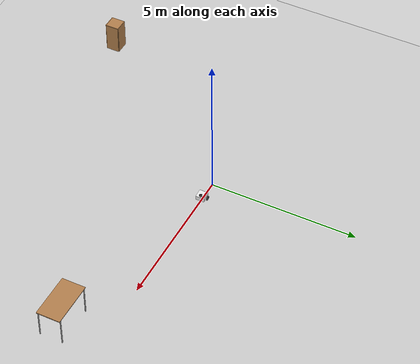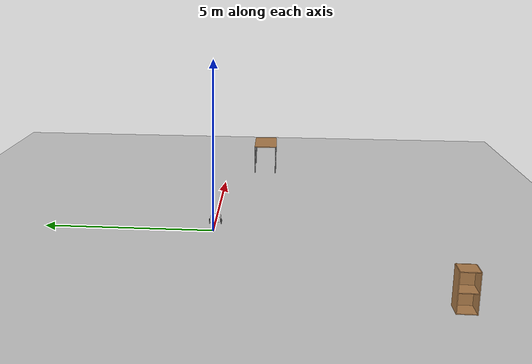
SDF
<sdf version="1.7">
 <world name="default">
  <light name="sun" type="directional">
   <pose>0 0 10 0 -0 0</pose>
   <diffuse>0.8 0.8 0.8 1</diffuse>
   <specular>0.2 0.2 0.2 1</specular>
   <attenuation>
    <range>1000</range>
    <constant>0.9</constant>
    <linear>0.01</linear>
    <quadratic>0.001</quadratic>
   </attenuation>
   <direction>-0.5 0.1 -0.9</direction>
   <spot><inner_angle>0</inner_angle><outer_angle>0</outer_angle><falloff>0</falloff></spot>
  </light>
  <model name="ground_plane">
   <static>1</static>
   <link name="link">
    <collision name="collision">
     <geometry><plane><normal>0 0 1</normal><size>100 100</size></plane></geometry>
     <surface>
      <contact><collide_bitmask>65535</collide_bitmask></contact>
      <friction><ode><mu>100</mu><mu2>50</mu2></ode></friction>
     </surface>
    </collision>
    <visual name="visual">
     <cast_shadows>0</cast_shadows>
     <geometry><plane><normal>0 0 1</normal><size>100 100</size></plane></geometry>
     <material>
      <script><uri>file://media/materials/scripts/gazebo.material</uri><name>Gazebo/Grey</name></script>
     </material>
    </visual>
   </link>
  </model>
  <gravity>0 0 -9.8</gravity>
  <magnetic_field>6e-06 2.3e-05 -4.2e-05</magnetic_field>
  <atmosphere type="adiabatic"/>
  <physics type="ode">
   <max_step_size>0.001</max_step_size>
   <real_time_factor>1</real_time_factor>
   <real_time_update_rate>1000</real_time_update_rate>
  </physics>
  <scene><ambient>0.4 0.4 0.4 1</ambient><background>0.7 0.7 0.7 1</background><shadows>1</shadows></scene>
  <audio><device>default</device></audio>
  <spherical_coordinates>
   <surface_model>EARTH_WGS84</surface_model>
   <latitude_deg>0</latitude_deg>
   <longitude_deg>0</longitude_deg>
   <elevation>0</elevation>
   <heading_deg>0</heading_deg>
  </spherical_coordinates>
  <model name="my_bot">
   <link name="base_link">
    <inertial>
     <pose>0.067857 0 0.078571 0 -0 0</pose>
     <mass>0.7</mass>
     <inertia>
      <ixx>0.0078329</ixx>
      <ixy>0</ixy>
      <ixz>-0.000330357</ixz>
      <iyy>0.00842219</iyy>
      <iyz>0</iyz>
      <izz>0.00841029</izz>
     </inertia>
    </inertial>
    <collision name="base_link_fixed_joint_lump__chassis_collision">
     <pose>0.05 0 0.075 0 -0 0</pose>
     <geometry><box><size>0.3 0.3 0.15</size></box></geometry>
    </collision>
    <collision name="base_link_fixed_joint_lump__caster_wheel_collision_1">
     <pose>0.1 0 0 0 -0 0</pose>
     <geometry><sphere><radius>0.07</radius></sphere></geometry>
     <surface><friction><ode><mu>0.001</mu><mu2>0.001</mu2></ode></friction></surface>
    </collision>
    <collision name="base_link_fixed_joint_lump__lidar_frame_collision_2">
     <pose>0.125 0 0.175 0 -0 0</pose>
     <geometry><cylinder><length>0.04</length><radius>0.05</radius></cylinder></geometry>
    </collision>
    <visual name="base_link_fixed_joint_lump__chassis_visual">
     <pose>0.05 0 0.075 0 -0 0</pose>
     <geometry><box><size>0.3 0.3 0.15</size></box></geometry>
     <material>
      <script><name>Gazebo/White</name><uri>file://media/materials/scripts/gazebo.material</uri></script>
     </material>
    </visual>
    <visual name="base_link_fixed_joint_lump__caster_wheel_visual_1">
     <pose>0.1 0 0 0 -0 0</pose>
     <geometry><sphere><radius>0.07</radius></sphere></geometry>
     <material>
      <script><name>Gazebo/Black</name><uri>file://media/materials/scripts/gazebo.material</uri></script>
     </material>
    </visual>
    <visual name="base_link_fixed_joint_lump__lidar_frame_visual_2">
     <pose>0.125 0 0.175 0 -0 0</pose>
     <geometry><cylinder><length>0.04</length><radius>0.05</radius></cylinder></geometry>
     <material>
      <script><name>Gazebo/Black</name><uri>file://media/materials/scripts/gazebo.material</uri></script>
     </material>
    </visual>
    <sensor name="laser" type="ray">
     <visualize>1</visualize>
     <update_rate>10</update_rate>
     <ray>
      <scan>
       <horizontal>
        <samples>360</samples>
        <min_angle>-3.14</min_angle>
        <max_angle>3.14</max_angle>
        <resolution>1</resolution>
       </horizontal>
       <vertical><samples>1</samples><min_angle>0</min_angle><max_angle>0</max_angle></vertical>
      </scan>
      <range><min>0.3</min><max>12</max></range>
     </ray>
     <plugin name="laser_controller" filename="libgazebo_ros_ray_sensor.so">
      <ros><argument>~/out:=scan</argument></ros>
      <output_type>sensor_msgs/LaserScan</output_type>
      <frame_name>lidar_frame</frame_name>
     </plugin>
     <pose>0.125 0 0.175 0 -0 0</pose>
    </sensor>
   </link>
   <joint name="left_wheel_joint" type="revolute">
    <pose relative_to="base_link">0 0.175 0 -1.5708 0 0</pose>
    <parent>base_link</parent>
    <child>left_wheel</child>
    <axis>
     <xyz>0 0 1</xyz>
     <limit><lower>-1e+16</lower><upper>1e+16</upper></limit>
     <dynamics><spring_reference>0</spring_reference><spring_stiffness>0</spring_stiffness></dynamics>
    </axis>
   </joint>
   <link name="left_wheel">
    <pose relative_to="left_wheel_joint">0 0 0 0 -0 0</pose>
    <inertial>
     <mass>0.1</mass>
     <inertia>
      <ixx>0.000150537</ixx>
      <ixy>0</ixy>
      <ixz>0</ixz>
      <iyy>0.000150537</iyy>
      <iyz>0</iyz>
      <izz>0.000290322</izz>
     </inertia>
    </inertial>
    <collision name="left_wheel_collision">
     <geometry><cylinder><length>0.0254</length><radius>0.0762</radius></cylinder></geometry>
    </collision>
    <visual name="left_wheel_visual">
     <geometry><cylinder><length>0.0254</length><radius>0.0762</radius></cylinder></geometry>
     <material>
      <script><name>Gazebo/Black</name><uri>file://media/materials/scripts/gazebo.material</uri></script>
     </material>
    </visual>
   </link>
   <joint name="right_wheel_joint" type="revolute">
    <pose relative_to="base_link">0 -0.175 0 1.5708 -0 0</pose>
    <parent>base_link</parent>
    <child>right_wheel</child>
    <axis>
     <xyz>0 0 -1</xyz>
     <limit><lower>-1e+16</lower><upper>1e+16</upper></limit>
     <dynamics><spring_reference>0</spring_reference><spring_stiffness>0</spring_stiffness></dynamics>
    </axis>
   </joint>
   <link name="right_wheel">
    <pose relative_to="right_wheel_joint">0 0 0 0 -0 0</pose>
    <inertial>
     <mass>0.1</mass>
     <inertia>
      <ixx>0.000150537</ixx>
      <ixy>0</ixy>
      <ixz>0</ixz>
      <iyy>0.000150537</iyy>
      <iyz>0</iyz>
      <izz>0.000290322</izz>
     </inertia>
    </inertial>
    <collision name="right_wheel_collision">
     <geometry><cylinder><length>0.0254</length><radius>0.0762</radius></cylinder></geometry>
    </collision>
    <visual name="right_wheel_visual">
     <geometry><cylinder><length>0.0254</length><radius>0.0762</radius></cylinder></geometry>
     <material>
      <script><name>Gazebo/Black</name><uri>file://media/materials/scripts/gazebo.material</uri></script>
     </material>
    </visual>
   </link>
   <static>0</static>
   <plugin name="diff_drive" filename="libgazebo_ros_diff_drive.so">
    <left_joint>left_wheel_joint</left_joint>
    <right_joint>right_wheel_joint</right_joint>
    <wheel_separation>0.35</wheel_separation>
    <wheel_diameter>0.1524</wheel_diameter>
    <max_wheel_torque>200</max_wheel_torque>
    <max_wheel_acceleration>10</max_wheel_acceleration>
    <odometry_frame>odom</odometry_frame>
    <robot_base_frame>base_link</robot_base_frame>
    <publish_odom>1</publish_odom>
    <publish_odom_tf>1</publish_odom_tf>
    <publish_wheel_tf>1</publish_wheel_tf>
   </plugin>
   <pose>0.652633 -0.007462 0.076201 -1e-06 0.062045 -0.002377</pose>
  </model>
  <model name="table">
   <static>1</static>
   <link name="link">
    <collision name="surface">
     <pose>0 0 1 0 -0 0</pose>
     <geometry><box><size>1.5 0.8 0.03</size></box></geometry>
     <surface><friction><ode><mu>0.6</mu><mu2>0.6</mu2></ode></friction></surface>
    </collision>
    <visual name="visual1">
     <pose>0 0 1 0 -0 0</pose>
     <geometry><box><size>1.5 0.8 0.03</size></box></geometry>
     <material>
      <script><uri>file://media/materials/scripts/gazebo.material</uri><name>Gazebo/Wood</name></script>
     </material>
    </visual>
    <collision name="front_left_leg">
     <pose>0.68 0.38 0.5 0 -0 0</pose>
     <geometry><cylinder><radius>0.02</radius><length>1</length></cylinder></geometry>
    </collision>
    <visual name="front_left_leg">
     <pose>0.68 0.38 0.5 0 -0 0</pose>
     <geometry><cylinder><radius>0.02</radius><length>1</length></cylinder></geometry>
     <material>
      <script><uri>file://media/materials/scripts/gazebo.material</uri><name>Gazebo/Grey</name></script>
     </material>
    </visual>
    <collision name="front_right_leg">
     <pose>0.68 -0.38 0.5 0 -0 0</pose>
     <geometry><cylinder><radius>0.02</radius><length>1</length></cylinder></geometry>
    </collision>
    <visual name="front_right_leg">
     <pose>0.68 -0.38 0.5 0 -0 0</pose>
     <geometry><cylinder><radius>0.02</radius><length>1</length></cylinder></geometry>
     <material>
      <script><uri>file://media/materials/scripts/gazebo.material</uri><name>Gazebo/Grey</name></script>
     </material>
    </visual>
    <collision name="back_right_leg">
     <pose>-0.68 -0.38 0.5 0 -0 0</pose>
     <geometry><cylinder><radius>0.02</radius><length>1</length></cylinder></geometry>
    </collision>
    <visual name="back_right_leg">
     <pose>-0.68 -0.38 0.5 0 -0 0</pose>
     <geometry><cylinder><radius>0.02</radius><length>1</length></cylinder></geometry>
     <material>
      <script><uri>file://media/materials/scripts/gazebo.material</uri><name>Gazebo/Grey</name></script>
     </material>
    </visual>
    <collision name="back_left_leg">
     <pose>-0.68 0.38 0.5 0 -0 0</pose>
     <geometry><cylinder><radius>0.02</radius><length>1</length></cylinder></geometry>
    </collision>
    <visual name="back_left_leg">
     <pose>-0.68 0.38 0.5 0 -0 0</pose>
     <geometry><cylinder><radius>0.02</radius><length>1</length></cylinder></geometry>
     <material>
      <script><uri>file://media/materials/scripts/gazebo.material</uri><name>Gazebo/Grey</name></script>
     </material>
    </visual>
   </link>
   <pose>7.09418 -1.35818 0 0 -0 0</pose>
  </model>
  <model name="cabinet">
   <static>1</static>
   <link name="cabinet_bottom_plate">
    <inertial>
     <pose>0 0 -1 0 -0 0</pose>
     <inertia><ixx>2.05</ixx><ixy>0</ixy><ixz>0</ixz><iyy>2.05</iyy><iyz>0</iyz><izz>2.05</izz></inertia>
     <mass>25</mass>
    </inertial>
    <collision name="cabinet_bottom_plate_geom">
     <pose>0 0 0.01 0 -0 0</pose>
     <geometry><box><size>0.45 0.45 0.02</size></box></geometry>
    </collision>
    <visual name="cabinet_bottom_plate_geom_visual">
     <pose>0 0 0.01 0 -0 0</pose>
     <geometry><box><size>0.45 0.45 0.02</size></box></geometry>
     <material>
      <script><uri>file://media/materials/scripts/gazebo.material</uri><name>Gazebo/Wood</name></script>
     </material>
    </visual>
    <collision name="cabinet_bottom_plate_geom_cabinet_back_plate">
     <pose>0.235 0 0.51 0 -0 0</pose>
     <geometry><box><size>0.02 0.45 1.02</size></box></geometry>
    </collision>
    <visual name="cabinet_bottom_plate_geom_cabinet_back_plate_visual">
     <pose>0.235 0 0.51 0 -0 0</pose>
     <geometry><box><size>0.02 0.45 1.02</size></box></geometry>
     <material>
      <script><uri>file://media/materials/scripts/gazebo.material</uri><name>Gazebo/Wood</name></script>
     </material>
    </visual>
    <collision name="cabinet_bottom_plate_geom_cabinet_left_plate">
     <pose>0 0.235 0.51 0 -0 0</pose>
     <geometry><box><size>0.45 0.02 1.02</size></box></geometry>
    </collision>
    <visual name="cabinet_bottom_plate_geom_cabinet_left_plate_visual">
     <pose>0 0.235 0.51 0 -0 0</pose>
     <geometry><box><size>0.45 0.02 1.02</size></box></geometry>
     <material>
      <script><uri>file://media/materials/scripts/gazebo.material</uri><name>Gazebo/Wood</name></script>
     </material>
    </visual>
    <collision name="cabinet_bottom_plate_geom_cabinet_middle_plate">
     <pose>0 0 0.51 0 -0 0</pose>
     <geometry><box><size>0.45 0.45 0.02</size></box></geometry>
    </collision>
    <visual name="cabinet_bottom_plate_geom_cabinet_middle_plate_visual">
     <pose>0 0 0.51 0 -0 0</pose>
     <geometry><box><size>0.45 0.45 0.02</size></box></geometry>
     <material>
      <script><uri>file://media/materials/scripts/gazebo.material</uri><name>Gazebo/Wood</name></script>
     </material>
    </visual>
    <collision name="cabinet_bottom_plate_geom_cabinet_right_plate">
     <pose>0 -0.235 0.51 0 -0 0</pose>
     <geometry><box><size>0.45 0.02 1.02</size></box></geometry>
    </collision>
    <visual name="cabinet_bottom_plate_geom_cabinet_right_plate_visual">
     <pose>0 -0.235 0.51 0 -0 0</pose>
     <geometry><box><size>0.45 0.02 1.02</size></box></geometry>
     <material>
      <script><uri>file://media/materials/scripts/gazebo.material</uri><name>Gazebo/Wood</name></script>
     </material>
    </visual>
    <collision name="cabinet_bottom_plate_geom_cabinet_top_plate">
     <pose>0 0 1.01 0 -0 0</pose>
     <geometry><box><size>0.45 0.45 0.02</size></box></geometry>
    </collision>
    <visual name="cabinet_bottom_plate_geom_cabinet_top_plate_visual">
     <pose>0 0 1.01 0 -0 0</pose>
     <geometry><box><size>0.45 0.45 0.02</size></box></geometry>
     <material>
      <script><uri>file://media/materials/scripts/gazebo.material</uri><name>Gazebo/Wood</name></script>
     </material>
    </visual>
   </link>
   <pose>-4.53499 -6.0779 0 0 -0 0</pose>
  </model>
 </world>
</sdf>
